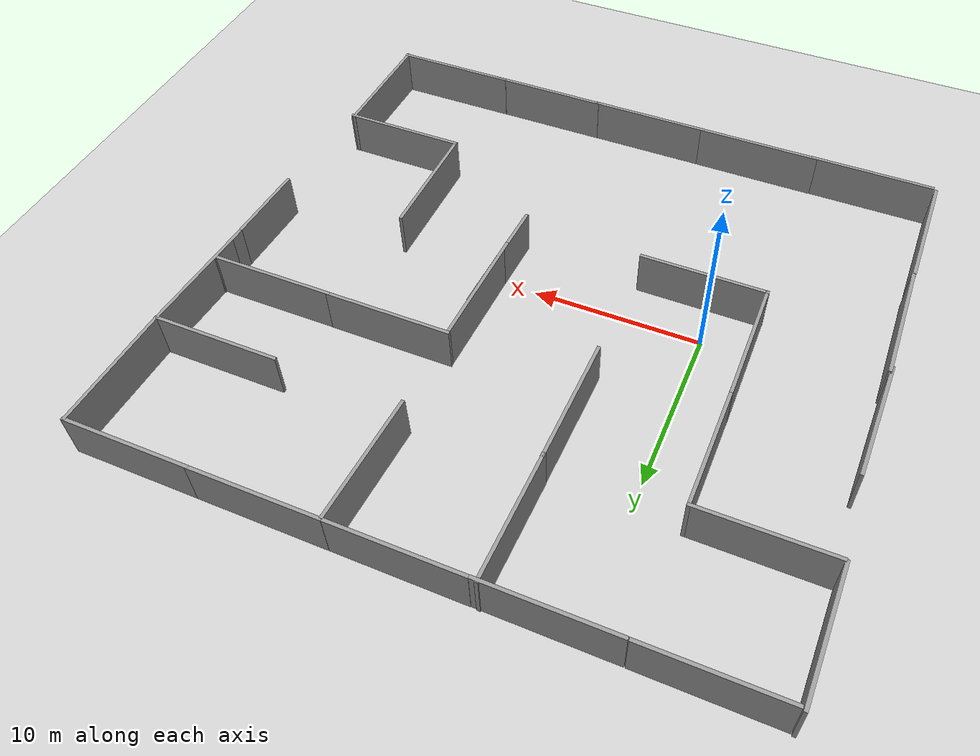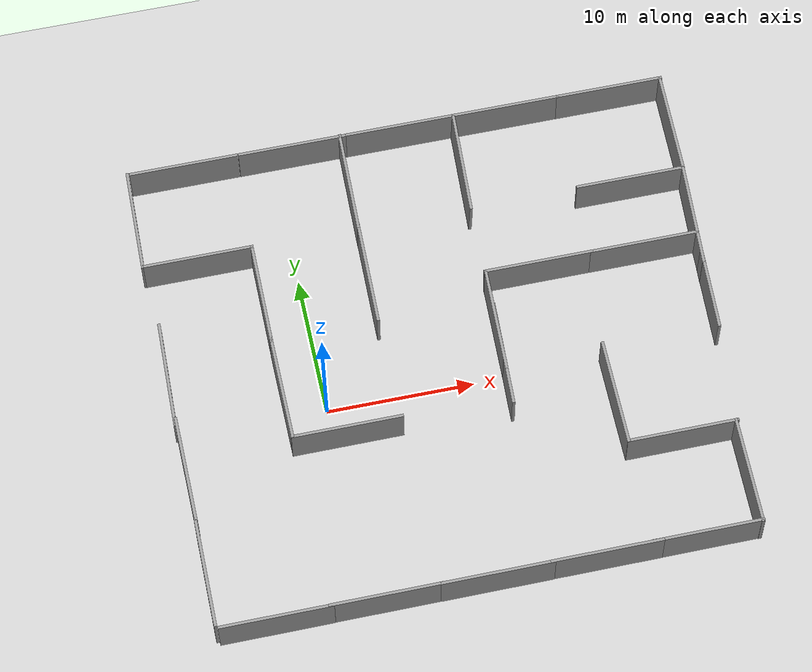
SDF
<sdf version="1.6">
 <world name="default">
  <light name="sun" type="directional">
   <pose>0 0 10 0 -0 0</pose>
   <diffuse>0.8 0.8 0.8 1</diffuse>
   <specular>0.2 0.2 0.2 1</specular>
   <attenuation>
    <range>1000</range>
    <constant>0.9</constant>
    <linear>0.01</linear>
    <quadratic>0.001</quadratic>
   </attenuation>
   <direction>-0.5 0.1 -0.9</direction>
  </light>
  <model name="ground_plane">
   <static>1</static>
   <link name="link">
    <collision name="collision">
     <geometry><plane><normal>0 0 1</normal><size>100 100</size></plane></geometry>
     <surface>
      <contact><collide_bitmask>65535</collide_bitmask></contact>
      <friction><ode><mu>100</mu><mu2>50</mu2></ode></friction>
     </surface>
    </collision>
    <visual name="visual">
     <cast_shadows>0</cast_shadows>
     <geometry><plane><normal>0 0 1</normal><size>100 100</size></plane></geometry>
     <material>
      <script><uri>file://media/materials/scripts/gazebo.material</uri><name>Gazebo/Grey</name></script>
     </material>
    </visual>
   </link>
  </model>
  <gravity>0 0 -9.8</gravity>
  <magnetic_field>6e-06 2.3e-05 -4.2e-05</magnetic_field>
  <atmosphere type="adiabatic"/>
  <physics name="default_physics" default="0" type="ode">
   <max_step_size>0.001</max_step_size>
   <real_time_factor>1</real_time_factor>
   <real_time_update_rate>1000</real_time_update_rate>
  </physics>
  <scene><ambient>0.4 0.4 0.4 1</ambient><background>0.7 0.7 0.7 1</background><shadows>1</shadows></scene>
  <audio><device>default</device></audio>
  <spherical_coordinates>
   <surface_model>EARTH_WGS84</surface_model>
   <latitude_deg>0</latitude_deg>
   <longitude_deg>0</longitude_deg>
   <elevation>0</elevation>
   <heading_deg>0</heading_deg>
  </spherical_coordinates>
  <model name="grey_wall">
   <static>1</static>
   <link name="link">
    <pose>0 0 1.4 0 -0 0</pose>
    <collision name="collision"><geometry><box><size>7.5 0.2 2.8</size></box></geometry></collision>
    <visual name="visual">
     <cast_shadows>0</cast_shadows>
     <geometry><box><size>7.5 0.2 2.8</size></box></geometry>
     <material>
      <script>
       <uri>model://grey_wall/materials/scripts</uri>
       <uri>model://grey_wall/materials/textures</uri>
       <name>vrc/grey_wall</name>
      </script>
     </material>
    </visual>
   </link>
   <pose>0.922487 -2.62145 0 0 -0 0</pose>
  </model>
  <model name="grey_wall_clone">
   <static>1</static>
   <link name="link">
    <pose>0 0 1.4 0 -0 0</pose>
    <collision name="collision"><geometry><box><size>7.5 0.2 2.8</size></box></geometry></collision>
    <visual name="visual">
     <cast_shadows>0</cast_shadows>
     <geometry><box><size>7.5 0.2 2.8</size></box></geometry>
     <material>
      <script>
       <uri>model://grey_wall/materials/scripts</uri>
       <uri>model://grey_wall/materials/textures</uri>
       <name>vrc/grey_wall</name>
      </script>
     </material>
    </visual>
   </link>
   <pose>-2.74774 1.07619 0 0 0 -1.56356</pose>
  </model>
  <model name="grey_wall_clone_0">
   <static>1</static>
   <link name="link">
    <pose>0 0 1.4 0 -0 0</pose>
    <collision name="collision"><geometry><box><size>7.5 0.2 2.8</size></box></geometry></collision>
    <visual name="visual">
     <cast_shadows>0</cast_shadows>
     <geometry><box><size>7.5 0.2 2.8</size></box></geometry>
     <material>
      <script>
       <uri>model://grey_wall/materials/scripts</uri>
       <uri>model://grey_wall/materials/textures</uri>
       <name>vrc/grey_wall</name>
      </script>
     </material>
    </visual>
   </link>
   <pose>-2.75378 8.23649 0 0 -0 1.56734</pose>
  </model>
  <model name="grey_wall_clone_1">
   <static>1</static>
   <link name="link">
    <pose>0 0 1.4 0 -0 0</pose>
    <collision name="collision"><geometry><box><size>7.5 0.2 2.8</size></box></geometry></collision>
    <visual name="visual">
     <cast_shadows>0</cast_shadows>
     <geometry><box><size>7.5 0.2 2.8</size></box></geometry>
     <material>
      <script>
       <uri>model://grey_wall/materials/scripts</uri>
       <uri>model://grey_wall/materials/textures</uri>
       <name>vrc/grey_wall</name>
      </script>
     </material>
    </visual>
   </link>
   <pose>-6.40604 11.8848 0 0 -0 0</pose>
  </model>
  <model name="grey_wall_clone_2">
   <static>1</static>
   <link name="link">
    <pose>0 0 1.4 0 -0 0</pose>
    <collision name="collision"><geometry><box><size>7.5 0.2 2.8</size></box></geometry></collision>
    <visual name="visual">
     <cast_shadows>0</cast_shadows>
     <geometry><box><size>7.5 0.2 2.8</size></box></geometry>
     <material>
      <script>
       <uri>model://grey_wall/materials/scripts</uri>
       <uri>model://grey_wall/materials/textures</uri>
       <name>vrc/grey_wall</name>
      </script>
     </material>
    </visual>
   </link>
   <pose>-6.13157 19.1505 0 0 -0 0</pose>
  </model>
  <model name="grey_wall_clone_3">
   <static>1</static>
   <link name="link">
    <pose>0 0 1.4 0 -0 0</pose>
    <collision name="collision"><geometry><box><size>7.5 0.2 2.8</size></box></geometry></collision>
    <visual name="visual">
     <cast_shadows>0</cast_shadows>
     <geometry><box><size>7.5 0.2 2.8</size></box></geometry>
     <material>
      <script>
       <uri>model://grey_wall/materials/scripts</uri>
       <uri>model://grey_wall/materials/textures</uri>
       <name>vrc/grey_wall</name>
      </script>
     </material>
    </visual>
   </link>
   <pose>-10.1004 15.5661 -0.05926 0 0 -1.59305</pose>
  </model>
  <model name="grey_wall_clone_4">
   <static>1</static>
   <link name="link">
    <pose>0 0 1.4 0 -0 0</pose>
    <collision name="collision"><geometry><box><size>7.5 0.2 2.8</size></box></geometry></collision>
    <visual name="visual">
     <cast_shadows>0</cast_shadows>
     <geometry><box><size>7.5 0.2 2.8</size></box></geometry>
     <material>
      <script>
       <uri>model://grey_wall/materials/scripts</uri>
       <uri>model://grey_wall/materials/textures</uri>
       <name>vrc/grey_wall</name>
      </script>
     </material>
    </visual>
   </link>
   <pose>1.40705 19.1439 0 0 -0 0</pose>
  </model>
  <model name="grey_wall_clone_5">
   <static>1</static>
   <link name="link">
    <pose>0 0 1.4 0 -0 0</pose>
    <collision name="collision"><geometry><box><size>7.5 0.2 2.8</size></box></geometry></collision>
    <visual name="visual">
     <cast_shadows>0</cast_shadows>
     <geometry><box><size>7.5 0.2 2.8</size></box></geometry>
     <material>
      <script>
       <uri>model://grey_wall/materials/scripts</uri>
       <uri>model://grey_wall/materials/textures</uri>
       <name>vrc/grey_wall</name>
      </script>
     </material>
    </visual>
   </link>
   <pose>4.65818 15.5506 0 0 0 -1.59366</pose>
  </model>
  <model name="grey_wall_clone_6">
   <static>1</static>
   <link name="link">
    <pose>0 0 1.4 0 -0 0</pose>
    <collision name="collision"><geometry><box><size>7.5 0.2 2.8</size></box></geometry></collision>
    <visual name="visual">
     <cast_shadows>0</cast_shadows>
     <geometry><box><size>7.5 0.2 2.8</size></box></geometry>
     <material>
      <script>
       <uri>model://grey_wall/materials/scripts</uri>
       <uri>model://grey_wall/materials/textures</uri>
       <name>vrc/grey_wall</name>
      </script>
     </material>
    </visual>
   </link>
   <pose>4.52272 8.31958 0 0 0 -1.58878</pose>
  </model>
  <model name="grey_wall_clone_7">
   <static>1</static>
   <link name="link">
    <pose>0 0 1.4 0 -0 0</pose>
    <collision name="collision"><geometry><box><size>7.5 0.2 2.8</size></box></geometry></collision>
    <visual name="visual">
     <cast_shadows>0</cast_shadows>
     <geometry><box><size>7.5 0.2 2.8</size></box></geometry>
     <material>
      <script>
       <uri>model://grey_wall/materials/scripts</uri>
       <uri>model://grey_wall/materials/textures</uri>
       <name>vrc/grey_wall</name>
      </script>
     </material>
    </visual>
   </link>
   <pose>8.89158 19.1574 0 0 -0 0</pose>
  </model>
  <model name="grey_wall_clone_8">
   <static>1</static>
   <link name="link">
    <pose>0 0 1.4 0 -0 0</pose>
    <collision name="collision"><geometry><box><size>7.5 0.2 2.8</size></box></geometry></collision>
    <visual name="visual">
     <cast_shadows>0</cast_shadows>
     <geometry><box><size>7.5 0.2 2.8</size></box></geometry>
     <material>
      <script>
       <uri>model://grey_wall/materials/scripts</uri>
       <uri>model://grey_wall/materials/textures</uri>
       <name>vrc/grey_wall</name>
      </script>
     </material>
    </visual>
   </link>
   <pose>16.4044 19.1594 0 0 -0 0</pose>
  </model>
  <model name="grey_wall_clone_9">
   <static>1</static>
   <link name="link">
    <pose>0 0 1.4 0 -0 0</pose>
    <collision name="collision"><geometry><box><size>7.5 0.2 2.8</size></box></geometry></collision>
    <visual name="visual">
     <cast_shadows>0</cast_shadows>
     <geometry><box><size>7.5 0.2 2.8</size></box></geometry>
     <material>
      <script>
       <uri>model://grey_wall/materials/scripts</uri>
       <uri>model://grey_wall/materials/textures</uri>
       <name>vrc/grey_wall</name>
      </script>
     </material>
    </visual>
   </link>
   <pose>12.4515 15.4011 0 -0.023586 0.002497 -1.62017</pose>
  </model>
  <model name="grey_wall_clone_10">
   <static>1</static>
   <link name="link">
    <pose>0 0 1.4 0 -0 0</pose>
    <collision name="collision"><geometry><box><size>7.5 0.2 2.8</size></box></geometry></collision>
    <visual name="visual">
     <cast_shadows>0</cast_shadows>
     <geometry><box><size>7.5 0.2 2.8</size></box></geometry>
     <material>
      <script>
       <uri>model://grey_wall/materials/scripts</uri>
       <uri>model://grey_wall/materials/textures</uri>
       <name>vrc/grey_wall</name>
      </script>
     </material>
    </visual>
   </link>
   <pose>27.2603 15.4744 0 0 0 -1.59499</pose>
  </model>
  <model name="grey_wall_clone_11">
   <static>1</static>
   <link name="link">
    <pose>0 0 1.4 0 -0 0</pose>
    <collision name="collision"><geometry><box><size>7.5 0.2 2.8</size></box></geometry></collision>
    <visual name="visual">
     <cast_shadows>0</cast_shadows>
     <geometry><box><size>7.5 0.2 2.8</size></box></geometry>
     <material>
      <script>
       <uri>model://grey_wall/materials/scripts</uri>
       <uri>model://grey_wall/materials/textures</uri>
       <name>vrc/grey_wall</name>
      </script>
     </material>
    </visual>
   </link>
   <pose>23.7404 19.1562 0 0 -0 0</pose>
  </model>
  <model name="grey_wall_clone_12">
   <static>1</static>
   <link name="link">
    <pose>0 0 1.4 0 -0 0</pose>
    <collision name="collision"><geometry><box><size>7.5 0.2 2.8</size></box></geometry></collision>
    <visual name="visual">
     <cast_shadows>0</cast_shadows>
     <geometry><box><size>7.5 0.2 2.8</size></box></geometry>
     <material>
      <script>
       <uri>model://grey_wall/materials/scripts</uri>
       <uri>model://grey_wall/materials/textures</uri>
       <name>vrc/grey_wall</name>
      </script>
     </material>
    </visual>
   </link>
   <pose>23.4494 11.8246 0 0 -0 0</pose>
  </model>
  <model name="grey_wall_clone_13">
   <static>1</static>
   <link name="link">
    <pose>0 0 1.4 0 -0 0</pose>
    <collision name="collision"><geometry><box><size>7.5 0.2 2.8</size></box></geometry></collision>
    <visual name="visual">
     <cast_shadows>0</cast_shadows>
     <geometry><box><size>7.5 0.2 2.8</size></box></geometry>
     <material>
      <script>
       <uri>model://grey_wall/materials/scripts</uri>
       <uri>model://grey_wall/materials/textures</uri>
       <name>vrc/grey_wall</name>
      </script>
     </material>
    </visual>
   </link>
   <pose>26.9444 8.12551 0 0 0 -1.62788</pose>
  </model>
  <model name="grey_wall_clone_14">
   <static>1</static>
   <link name="link">
    <pose>0 0 1.4 0 -0 0</pose>
    <collision name="collision"><geometry><box><size>7.5 0.2 2.8</size></box></geometry></collision>
    <visual name="visual">
     <cast_shadows>0</cast_shadows>
     <geometry><box><size>7.5 0.2 2.8</size></box></geometry>
     <material>
      <script>
       <uri>model://grey_wall/materials/scripts</uri>
       <uri>model://grey_wall/materials/textures</uri>
       <name>vrc/grey_wall</name>
      </script>
     </material>
    </visual>
   </link>
   <pose>26.6925 3.19083 0 0 0 -1.61326</pose>
  </model>
  <model name="grey_wall_clone_15">
   <static>1</static>
   <link name="link">
    <pose>0 0 1.4 0 -0 0</pose>
    <collision name="collision"><geometry><box><size>7.5 0.2 2.8</size></box></geometry></collision>
    <visual name="visual">
     <cast_shadows>0</cast_shadows>
     <geometry><box><size>7.5 0.2 2.8</size></box></geometry>
     <material>
      <script>
       <uri>model://grey_wall/materials/scripts</uri>
       <uri>model://grey_wall/materials/textures</uri>
       <name>vrc/grey_wall</name>
      </script>
     </material>
    </visual>
   </link>
   <pose>23.1935 6.74579 0 0 -0 0</pose>
  </model>
  <model name="grey_wall_clone_16">
   <static>1</static>
   <link name="link">
    <pose>0 0 1.4 0 -0 0</pose>
    <collision name="collision"><geometry><box><size>7.5 0.2 2.8</size></box></geometry></collision>
    <visual name="visual">
     <cast_shadows>0</cast_shadows>
     <geometry><box><size>7.5 0.2 2.8</size></box></geometry>
     <material>
      <script>
       <uri>model://grey_wall/materials/scripts</uri>
       <uri>model://grey_wall/materials/textures</uri>
       <name>vrc/grey_wall</name>
      </script>
     </material>
    </visual>
   </link>
   <pose>15.888 6.75384 0 0 -0 0</pose>
  </model>
  <model name="grey_wall_clone_17">
   <static>1</static>
   <link name="link">
    <pose>0 0 1.4 0 -0 0</pose>
    <collision name="collision"><geometry><box><size>7.5 0.2 2.8</size></box></geometry></collision>
    <visual name="visual">
     <cast_shadows>0</cast_shadows>
     <geometry><box><size>7.5 0.2 2.8</size></box></geometry>
     <material>
      <script>
       <uri>model://grey_wall/materials/scripts</uri>
       <uri>model://grey_wall/materials/textures</uri>
       <name>vrc/grey_wall</name>
      </script>
     </material>
    </visual>
   </link>
   <pose>12.1403 3.09769 0 0 0 -1.6007</pose>
  </model>
  <model name="grey_wall_clone_18">
   <static>1</static>
   <link name="link">
    <pose>0 0 1.4 0 -0 0</pose>
    <collision name="collision"><geometry><box><size>7.5 0.2 2.8</size></box></geometry></collision>
    <visual name="visual">
     <cast_shadows>0</cast_shadows>
     <geometry><box><size>7.5 0.2 2.8</size></box></geometry>
     <material>
      <script>
       <uri>model://grey_wall/materials/scripts</uri>
       <uri>model://grey_wall/materials/textures</uri>
       <name>vrc/grey_wall</name>
      </script>
     </material>
    </visual>
   </link>
   <pose>12.0686 0.51112 -0.004066 0 0 -1.61157</pose>
  </model>
  <model name="grey_wall_clone_19">
   <static>1</static>
   <link name="link">
    <pose>0 0 1.4 0 -0 0</pose>
    <collision name="collision"><geometry><box><size>7.5 0.2 2.8</size></box></geometry></collision>
    <visual name="visual">
     <cast_shadows>0</cast_shadows>
     <geometry><box><size>7.5 0.2 2.8</size></box></geometry>
     <material>
      <script>
       <uri>model://grey_wall/materials/scripts</uri>
       <uri>model://grey_wall/materials/textures</uri>
       <name>vrc/grey_wall</name>
      </script>
     </material>
    </visual>
   </link>
   <pose>18.6341 -3.82367 0 0 0 -1.57222</pose>
  </model>
  <model name="grey_wall_clone_20">
   <static>1</static>
   <link name="link">
    <pose>0 0 1.4 0 -0 0</pose>
    <collision name="collision"><geometry><box><size>7.5 0.2 2.8</size></box></geometry></collision>
    <visual name="visual">
     <cast_shadows>0</cast_shadows>
     <geometry><box><size>7.5 0.2 2.8</size></box></geometry>
     <material>
      <script>
       <uri>model://grey_wall/materials/scripts</uri>
       <uri>model://grey_wall/materials/textures</uri>
       <name>vrc/grey_wall</name>
      </script>
     </material>
    </visual>
   </link>
   <pose>22.299 -7.48761 0 0 -0 0</pose>
  </model>
  <model name="grey_wall_clone_21">
   <static>1</static>
   <link name="link">
    <pose>0 0 1.4 0 -0 0</pose>
    <collision name="collision"><geometry><box><size>7.5 0.2 2.8</size></box></geometry></collision>
    <visual name="visual">
     <cast_shadows>0</cast_shadows>
     <geometry><box><size>7.5 0.2 2.8</size></box></geometry>
     <material>
      <script>
       <uri>model://grey_wall/materials/scripts</uri>
       <uri>model://grey_wall/materials/textures</uri>
       <name>vrc/grey_wall</name>
      </script>
     </material>
    </visual>
   </link>
   <pose>22.1259 -14.7395 0 0 -0 0</pose>
  </model>
  <model name="grey_wall_clone_22">
   <static>1</static>
   <link name="link">
    <pose>0 0 1.4 0 -0 0</pose>
    <collision name="collision"><geometry><box><size>7.5 0.2 2.8</size></box></geometry></collision>
    <visual name="visual">
     <cast_shadows>0</cast_shadows>
     <geometry><box><size>7.5 0.2 2.8</size></box></geometry>
     <material>
      <script>
       <uri>model://grey_wall/materials/scripts</uri>
       <uri>model://grey_wall/materials/textures</uri>
       <name>vrc/grey_wall</name>
      </script>
     </material>
    </visual>
   </link>
   <pose>25.7911 -11.1261 0 0 0 -1.58569</pose>
  </model>
  <model name="grey_wall_clone_23">
   <static>1</static>
   <link name="link">
    <pose>0 0 1.4 0 -0 0</pose>
    <collision name="collision"><geometry><box><size>7.5 0.2 2.8</size></box></geometry></collision>
    <visual name="visual">
     <cast_shadows>0</cast_shadows>
     <geometry><box><size>7.5 0.2 2.8</size></box></geometry>
     <material>
      <script>
       <uri>model://grey_wall/materials/scripts</uri>
       <uri>model://grey_wall/materials/textures</uri>
       <name>vrc/grey_wall</name>
      </script>
     </material>
    </visual>
   </link>
   <pose>15.4698 -14.7507 0 0 -0 0</pose>
  </model>
  <model name="grey_wall_clone_24">
   <static>1</static>
   <link name="link">
    <pose>0 0 1.4 0 -0 0</pose>
    <collision name="collision"><geometry><box><size>7.5 0.2 2.8</size></box></geometry></collision>
    <visual name="visual">
     <cast_shadows>0</cast_shadows>
     <geometry><box><size>7.5 0.2 2.8</size></box></geometry>
     <material>
      <script>
       <uri>model://grey_wall/materials/scripts</uri>
       <uri>model://grey_wall/materials/textures</uri>
       <name>vrc/grey_wall</name>
      </script>
     </material>
    </visual>
   </link>
   <pose>8.30023 -14.765 0 0 -0 0</pose>
  </model>
  <model name="grey_wall_clone_25">
   <static>1</static>
   <link name="link">
    <pose>0 0 1.4 0 -0 0</pose>
    <collision name="collision"><geometry><box><size>7.5 0.2 2.8</size></box></geometry></collision>
    <visual name="visual">
     <cast_shadows>0</cast_shadows>
     <geometry><box><size>7.5 0.2 2.8</size></box></geometry>
     <material>
      <script>
       <uri>model://grey_wall/materials/scripts</uri>
       <uri>model://grey_wall/materials/textures</uri>
       <name>vrc/grey_wall</name>
      </script>
     </material>
    </visual>
   </link>
   <pose>1.0208 -14.7557 0 0 -0 0</pose>
  </model>
  <model name="grey_wall_clone_26">
   <static>1</static>
   <link name="link">
    <pose>0 0 1.4 0 -0 0</pose>
    <collision name="collision"><geometry><box><size>7.5 0.2 2.8</size></box></geometry></collision>
    <visual name="visual">
     <cast_shadows>0</cast_shadows>
     <geometry><box><size>7.5 0.2 2.8</size></box></geometry>
     <material>
      <script>
       <uri>model://grey_wall/materials/scripts</uri>
       <uri>model://grey_wall/materials/textures</uri>
       <name>vrc/grey_wall</name>
      </script>
     </material>
    </visual>
   </link>
   <pose>-6.11065 -14.7769 0 0 -0 0</pose>
  </model>
  <model name="grey_wall_clone_27">
   <static>1</static>
   <link name="link">
    <pose>0 0 1.4 0 -0 0</pose>
    <collision name="collision"><geometry><box><size>7.5 0.2 2.8</size></box></geometry></collision>
    <visual name="visual">
     <cast_shadows>0</cast_shadows>
     <geometry><box><size>7.5 0.2 2.8</size></box></geometry>
     <material>
      <script>
       <uri>model://grey_wall/materials/scripts</uri>
       <uri>model://grey_wall/materials/textures</uri>
       <name>vrc/grey_wall</name>
      </script>
     </material>
    </visual>
   </link>
   <pose>-9.96265 -10.9125 0 0 0 -1.5753</pose>
  </model>
  <model name="grey_wall_clone_28">
   <static>1</static>
   <link name="link">
    <pose>0 0 1.4 0 -0 0</pose>
    <collision name="collision"><geometry><box><size>7.5 0.2 2.8</size></box></geometry></collision>
    <visual name="visual">
     <cast_shadows>0</cast_shadows>
     <geometry><box><size>7.5 0.2 2.8</size></box></geometry>
     <material>
      <script>
       <uri>model://grey_wall/materials/scripts</uri>
       <uri>model://grey_wall/materials/textures</uri>
       <name>vrc/grey_wall</name>
      </script>
     </material>
    </visual>
   </link>
   <pose>-9.93643 -3.39845 0 0 0 -1.56367</pose>
  </model>
  <model name="grey_wall_clone_29">
   <static>1</static>
   <link name="link">
    <pose>0 0 1.4 0 -0 0</pose>
    <collision name="collision"><geometry><box><size>7.5 0.2 2.8</size></box></geometry></collision>
    <visual name="visual">
     <cast_shadows>0</cast_shadows>
     <geometry><box><size>7.5 0.2 2.8</size></box></geometry>
     <material>
      <script>
       <uri>model://grey_wall/materials/scripts</uri>
       <uri>model://grey_wall/materials/textures</uri>
       <name>vrc/grey_wall</name>
      </script>
     </material>
    </visual>
   </link>
   <pose>-9.95963 3.67891 4.6e-05 -0.001248 0.044982 -1.59854</pose>
  </model>
 </world>
</sdf>
